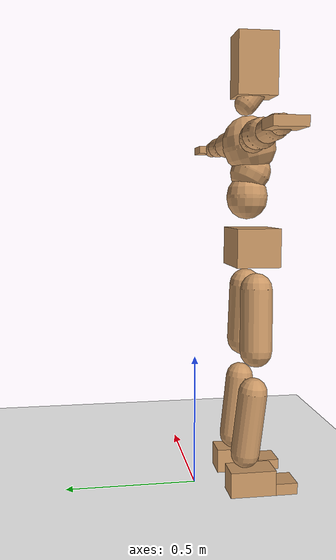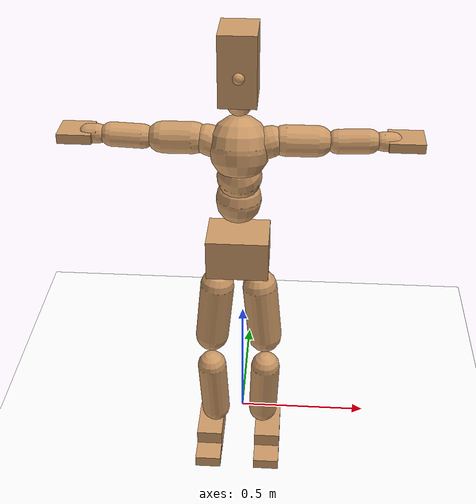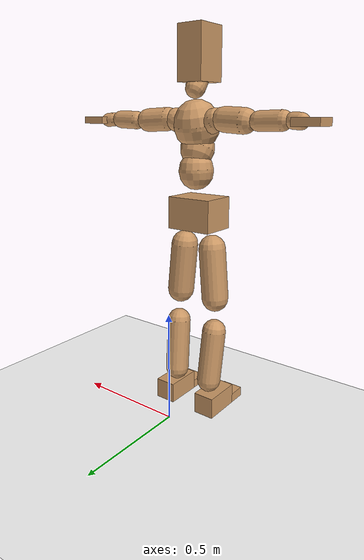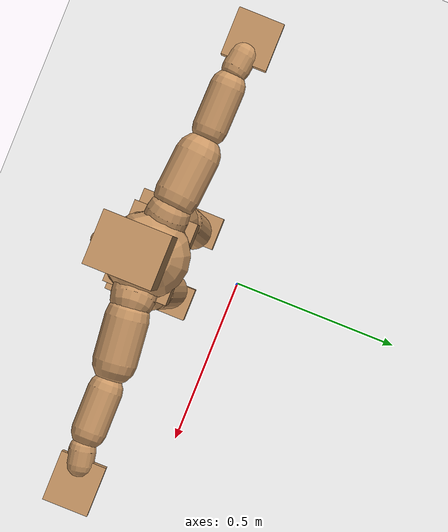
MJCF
<mujoco model="humanoid">
  <option integrator="implicitfast" />

  <visual>
    <global offwidth="1280" offheight="960" />
    <headlight active="1" ambient="0.34 0.34 0.34" diffuse="0.5 0.5 0.5" />
  </visual>

  <default>
    <joint damping="2" stiffness="2" armature="0.01" limited="true" solimplimit="0 .99 .01" />
    <geom condim="1" friction="0.7 0.005 0.0001" solimp=".99 .99 .003" solref="0.015 1" margin="0.001" rgba="0.8 0.6 .4 1" />
    <default class="smplcontact">
      <geom condim="3" friction="1. 0.005 0.0001" solref="0.015 1" solimp="0.98 0.98 0.001" priority="1" />
    </default>
    <default class="stiff_medium">
      <joint stiffness="10" />
    </default>
    <default class="stiff_medium_higher">
      <joint stiffness="50" />
    </default>
    <default class="stiff_high">
      <joint stiffness="100" />
    </default>
  </default>

  <asset>
    <texture type="skybox" builtin="gradient" rgb1="0.99 0.99 0.99" rgb2="0.608 0.828 0.892" width="100" />
    <texture builtin="flat" height="1278" mark="cross" markrgb="1 1 1" name="texgeom" random="0.01" rgb1="0.8 0.6 0.4" rgb2="0.8 0.6 0.4" type="cube" width="127" />
    <texture name="texplane" type="2d" builtin="checker" markrgb="1 1 1" rgb1="0.756 0.772 0.76" rgb2="0.6 0.6 0.6" width="100" height="100" />
    <material name="MatPlane" reflectance="0.5" texture="texplane" texrepeat="1 1" texuniform="true" />
    <material name="geom" texture="texgeom" texuniform="true" />
  </asset>

  <worldbody>
    <light name="tracking_light" pos="0 0 7" dir="0 0 -1" directional="true" cutoff="100" exponent="1" diffuse="1 1 1" specular="0.1 0.1 0.1" mode="trackcom" />
    <camera name="back" pos="0 3 2.4" xyaxes="-1 0 0 0 -1 2" mode="trackcom" />
    <camera name="side" pos="-3 0 2.4" xyaxes="0 -1 0 1 0 2" mode="trackcom" />
    <camera name="front_side" pos="-2.8 -2.8 0.8" xyaxes="0.5 -0.5 0 0.1 0.1 1" mode="trackcom" />
    <geom condim="3" name="floor" pos="0 0 0" rgba="1 1 1 1" size="100 100 .2" type="plane" material="MatPlane" />
    <body name="Pelvis" pos="-0.0018 -0.2233 0.9367" euler="90 0 0">
      <site name="Pelvis" size="0.01" />
      <freejoint name="Pelvis" />
      <geom type="box" pos="-0.0000 -0.0121 -0.0055" size="0.1069 0.0722 0.083" quat="1.0000 0.0000 0.0000 0.0000" density="3165.830099" name="Pelvis" />
      <body name="L_Hip" pos="0.0695 -0.0914 -0.0068">
        <joint name="L_Hip_x" type="hinge" pos="0 0 0" axis="1 0 0" stiffness="10.0" range="-160.0 22.92" class="stiff_medium" damping="15.0" armature="0.01"/>
        <joint name="L_Hip_y" type="hinge" pos="0 0 0" axis="0 1 0" stiffness="10.0" range="-70.0 70.0" class="stiff_medium" damping="10.000000000000002" armature="0.010000000000000005"/>
        <joint name="L_Hip_z" type="hinge" pos="0 0 0" axis="0 0 1" stiffness="10.0" range="-28.65 90.0" class="stiff_medium" damping="9.999999999999998" armature="0.009999999999999998"/>
        <geom type="capsule" density="2040.816327" fromto="0.0069 -0.075 -0.0009 0.0274 -0.3002 -0.0036" size="0.0615" name="L_Hip" />
        <body name="L_Knee" pos="0.0343 -0.3752 -0.0045">
          <joint name="L_Knee_x" type="hinge" pos="0 0 0" axis="1 0 0" range="-5.16 171.89" damping="8.000000000000005" armature="0.010000000000000014" stiffness="2.0"/>
          <joint name="L_Knee_y" type="hinge" pos="0 0 0" axis="0 1 0" range="-4.58 6.88" damping="7.999999999999998" armature="0.009999999999999995" stiffness="2.0"/>
          <joint name="L_Knee_z" type="hinge" pos="0 0 0" axis="0 0 1" range="-6.88 4.58" damping="8.000000000000004" armature="0.010000000000000009" stiffness="2.0"/>
          <geom type="capsule" density="1234.567901" fromto="-0.0027 -0.0796 -0.0087 -0.0109 -0.3184 -0.035" size="0.0541" name="L_Knee" />
          <body name="L_Ankle" pos="-0.0136 -0.398 -0.0437">
            <joint name="L_Ankle_x" type="hinge" pos="0 0 0" axis="1 0 0" range="-45.84 45.84" class="stiff_medium" damping="6.000000000000018" armature="0.010000000000000061" stiffness="10.0"/>
            <joint name="L_Ankle_y" type="hinge" pos="0 0 0" axis="0 1 0" range="-74.48 22.92" class="stiff_medium" damping="3.000000000000001" armature="0.010000000000000005" stiffness="10.0"/>
            <joint name="L_Ankle_z" type="hinge" pos="0 0 0" axis="0 0 1" range="-4.58 4.58" class="stiff_medium" damping="6.000000000000005" armature="0.010000000000000021" stiffness="10.0"/>
            <geom type="box" pos="0.0233 -0.0239 0.0242" size="0.0483 0.0464 0.085" quat="1.0000 0.0000 0.0000 0.0000" density="449.071558" name="L_Ankle" class="smplcontact" />
            <body name="L_Toe" pos="0.0264 -0.0558 0.1193">
              <joint name="L_Toe_x" type="hinge" pos="0 0 0" axis="1 0 0" range="-91.67 22.92" armature="0.00999999999999859" damping="1.9999999999998588" stiffness="2.0"/>
              <joint name="L_Toe_y" type="hinge" pos="0 0 0" axis="0 1 0" range="-4.58 4.58" armature="0.009999999999999976" damping="1.9999999999999976" stiffness="2.0"/>
              <joint name="L_Toe_z" type="hinge" pos="0 0 0" axis="0 0 1" range="-4.58 4.58" armature="0.009999999999998663" damping="1.9999999999998663" stiffness="2.0"/>
              <geom type="box" pos="-0.003 0.0055 0.0248" size="0.0478 0.02 0.0496" quat="1.0000 0.0000 0.0000 0.0000" density="423.206892" name="L_Toe" class="smplcontact" />
            </body>
          </body>
        </body>
      </body>
      <body name="R_Hip" pos="-0.0677 -0.0905 -0.0043">
        <joint name="R_Hip_x" type="hinge" pos="0 0 0" axis="1 0 0" stiffness="10.0" range="-160.0 22.92" class="stiff_medium" damping="15.0" armature="0.01"/>
        <joint name="R_Hip_y" type="hinge" pos="0 0 0" axis="0 1 0" stiffness="10.0" range="-70.0 70.0" class="stiff_medium" damping="10.000000000000002" armature="0.010000000000000005"/>
        <joint name="R_Hip_z" type="hinge" pos="0 0 0" axis="0 0 1" stiffness="10.0" range="-90.0 28.65" class="stiff_medium" damping="9.999999999999998" armature="0.009999999999999998"/>
        <geom type="capsule" density="2040.816327" fromto="-0.0077 -0.0765 -0.0018 -0.0306 -0.3061 -0.0071" size="0.0606" name="R_Hip" />
        <body name="R_Knee" pos="-0.0383 -0.3826 -0.0089">
          <joint name="R_Knee_x" type="hinge" pos="0 0 0" axis="1 0 0" range="-5.16 171.89" damping="8.000000000000005" armature="0.010000000000000014" stiffness="2.0"/>
          <joint name="R_Knee_y" type="hinge" pos="0 0 0" axis="0 1 0" range="-6.88 4.58" damping="7.999999999999998" armature="0.009999999999999995" stiffness="2.0"/>
          <joint name="R_Knee_z" type="hinge" pos="0 0 0" axis="0 0 1" range="-4.58 6.88" damping="8.000000000000004" armature="0.010000000000000009" stiffness="2.0"/>
          <geom type="capsule" density="1234.567901" fromto="0.0032 -0.0797 -0.0085 0.0126 -0.3187 -0.0338" size="0.0541" name="R_Knee" />
          <body name="R_Ankle" pos="0.0158 -0.3984 -0.0423">
            <joint name="R_Ankle_x" type="hinge" pos="0 0 0" axis="1 0 0" range="-45.84 45.84" class="stiff_medium" damping="6.000000000000018" armature="0.010000000000000061" stiffness="10.0"/>
            <joint name="R_Ankle_y" type="hinge" pos="0 0 0" axis="0 1 0" range="-22.92 74.48" class="stiff_medium" damping="3.000000000000001" armature="0.010000000000000005" stiffness="10.0"/>
            <joint name="R_Ankle_z" type="hinge" pos="0 0 0" axis="0 0 1" range="-4.58 4.58" class="stiff_medium" damping="6.000000000000005" armature="0.010000000000000021" stiffness="10.0"/>
            <geom type="box" pos="-0.0212 -0.0174 0.0256" size="0.0483 0.0478 0.0865" quat="1.0000 0.0000 0.0000 0.0000" density="434.700981" name="R_Ankle" class="smplcontact" />
            <body name="R_Toe" pos="-0.0254 -0.0481 0.1233">
              <joint name="R_Toe_x" type="hinge" pos="0 0 0" axis="1 0 0" range="-91.67 22.92" armature="0.00999999999999859" damping="1.9999999999998588" stiffness="2.0"/>
              <joint name="R_Toe_y" type="hinge" pos="0 0 0" axis="0 1 0" range="-4.58 4.58" armature="0.009999999999999976" damping="1.9999999999999976" stiffness="2.0"/>
              <joint name="R_Toe_z" type="hinge" pos="0 0 0" axis="0 0 1" range="-4.58 4.58" armature="0.009999999999998663" damping="1.9999999999998663" stiffness="2.0"/>
              <geom type="box" pos="0.0042 0.0045 0.0227" size="0.0479 0.0216 0.0493" quat="1.0000 0.0000 0.0000 0.0000" density="407.384095" name="R_Toe" class="smplcontact" />
            </body>
          </body>
        </body>
      </body>
      <body name="Torso" pos="-0.0025 0.109 -0.0267">
        <joint name="Torso_x" type="hinge" pos="0 0 0" axis="1 0 0" range="-25.78 57.3" class="stiff_medium" damping="13.296564125699913" armature="0.008717287887859698" stiffness="9.01394612244898"/>
        <joint name="Torso_y" type="hinge" pos="0 0 0" axis="0 1 0" range="-57.3 57.3" class="stiff_high" damping="11.857975578739207" armature="0.003844721181114158" stiffness="91.43158775510203"/>
        <joint name="Torso_z" type="hinge" pos="0 0 0" axis="0 0 1" range="-34.38 34.38" class="stiff_high" damping="16.193220219297853" armature="0.007045583299802339" stiffness="93.0442413043478"/>
        <geom type="capsule" density="2040.816327" fromto="0.0025 0.0608 0.0005 0.003 0.0743 0.0006" size="0.0769" name="Torso" />
        <body name="Spine" pos="0.0055 0.1352 0.0011">
          <joint name="Spine_x" type="hinge" pos="0 0 0" axis="1 0 0" stiffness="8.855082083333333" range="-25.78 57.3" class="stiff_medium" damping="13.07679767745399" armature="0.008582774445870411"/>
          <joint name="Spine_y" type="hinge" pos="0 0 0" axis="0 1 0" stiffness="8.966550425531915" range="-57.3 57.3" class="stiff_high" damping="4.670538649446806" armature="0.003801268715520681"/>
          <joint name="Spine_z" type="hinge" pos="0 0 0" axis="0 0 1" stiffness="17.399179999999998" range="-34.38 34.38" class="stiff_high" damping="8.612389288095054" armature="0.0059208768307291906"/>
          <geom type="capsule" density="2040.816327" fromto="0.0007 0.0238 0.0114 0.0008 0.0291 0.014" size="0.0755" name="Spine" />
          <body name="Chest" pos="0.0015 0.0529 0.0254">
            <joint name="Chest_x" type="hinge" pos="0 0 0" axis="1 0 0" stiffness="8.445605217391304" range="-25.78 57.3" class="stiff_medium" damping="12.725283601188007" armature="0.008521609816255424"/>
            <joint name="Chest_y" type="hinge" pos="0 0 0" axis="0 1 0" stiffness="7.416513142857141" range="-57.3 57.3" class="stiff_high" damping="4.235867490218071" armature="0.0037801147775485626"/>
            <joint name="Chest_z" type="hinge" pos="0 0 0" axis="0 0 1" stiffness="17.461715111111108" range="-34.38 34.38" class="stiff_high" damping="8.265316118618491" armature="0.00543374860898024"/>
            <geom type="capsule" density="2040.816327" fromto="-0.0009 0.0682 -0.0173 -0.001 0.0833 -0.0212" size="0.1002" name="Chest" />
            <body name="Neck" pos="-0.0028 0.2139 -0.0429">
              <joint name="Neck_x" type="hinge" pos="0 0 0" axis="1 0 0" range="-28.65 57.3" class="stiff_medium_higher" damping="9.999999999999993" armature="0.009999999999999988" stiffness="50.0"/>
              <joint name="Neck_y" type="hinge" pos="0 0 0" axis="0 1 0" range="-40.11 40.11" class="stiff_medium_higher" damping="10.0" armature="0.010000000000000002" stiffness="50.0"/>
              <joint name="Neck_z" type="hinge" pos="0 0 0" axis="0 0 1" range="-40.11 40.11" class="stiff_medium_higher" damping="9.999999999999993" armature="0.009999999999999985" stiffness="50.0"/>
              <geom type="capsule" density="1000" fromto="0.001 0.013 0.0103 0.0041 0.052 0.0411" size="0.0436" name="Neck" />
              <body name="Head" pos="0.0052 0.065 0.0513">
                <joint name="Head_x" type="hinge" pos="0 0 0" axis="1 0 0" range="-28.65 57.3" class="stiff_medium_higher" damping="1.9999999999999987" armature="0.009999999999999986" stiffness="50.0"/>
                <joint name="Head_y" type="hinge" pos="0 0 0" axis="0 1 0" range="-40.11 40.11" class="stiff_medium_higher" damping="2.0" armature="0.010000000000000002" stiffness="50.0"/>
                <joint name="Head_z" type="hinge" pos="0 0 0" axis="0 0 1" range="-40.11 40.11" class="stiff_medium_higher" damping="2.000000000000001" armature="0.010000000000000009" stiffness="50.0"/>
                <geom type="box" pos="-0.0042 0.0876 -0.0116" size="0.0606 0.1154 0.076" quat="1.0000 0.0000 0.0000 0.0000" density="1018.069894" name="Head" />
                <geom type="capsule" name="nose" size="0.02 0.01" pos="0 0.07 0.05" quat="1 0 0 0" mass="0" contype="0" conaffinity="0" />
              </body>
            </body>
            <body name="L_Thorax" pos="0.052205 0.0806262 -0.0225912">
              <joint name="L_Thorax_x" type="hinge" pos="0 0 0" axis="1 0 0" range="-10.89 4.58" class="stiff_medium_higher" damping="10.752161019344747" armature="0.0054925344912440666" stiffness="26.310478061224497"/>
              <joint name="L_Thorax_y" type="hinge" pos="0 0 0" axis="0 1 0" range="-28.65 17.19" class="stiff_medium_higher" damping="8.656507675839675" armature="0.0035990909186137975" stiffness="26.025712755102038"/>
              <joint name="L_Thorax_z" type="hinge" pos="0 0 0" axis="0 0 1" range="-31.51 40.11" class="stiff_medium_higher" damping="8.654936190408645" armature="0.003597349455452556" stiffness="26.02885867346939"/>
              <geom type="capsule" density="1000" fromto="0.0120575 0.00404125 -0.0011925 0.04823 0.016165 -0.00470375" size="0.0521" name="L_Thorax" />
              <body name="L_Shoulder" pos="0.0602875 0.0202062 -0.00589625">
                <joint name="L_Shoulder_x" type="hinge" pos="0 0 0" axis="1 0 0" range="-97.4 97.4" class="stiff_medium" damping="3.4355706113714177" armature="0.006181474178058657" stiffness="5.3039961224489796"/>
                <joint name="L_Shoulder_y" type="hinge" pos="0 0 0" axis="0 1 0" range="-108.86 80.21" class="stiff_medium" damping="2.6194672785690365" armature="0.003646930251057189" stiffness="5.226319999999999"/>
                <joint name="L_Shoulder_z" type="hinge" pos="0 0 0" axis="0 0 1" range="-97.4 85.94" class="stiff_medium" damping="2.6197349169276207" armature="0.003644479893049839" stiffness="5.230902653061225"/>
                <geom type="capsule" density="1000" fromto="0.0343837 -0.0017225 -0.00364375 0.137601 -0.0067575 -0.014575" size="0.0517" name="L_Shoulder" />
                <body name="L_Elbow" pos="0.171985 -0.00848 -0.0182187">
                  <joint name="L_Elbow_x" type="hinge" pos="0 0 0" axis="1 0 0" range="-17.19 4.58" damping="3.1785577743547178" armature="0.00739366237886889" stiffness="1.0931772653061227"/>
                  <joint name="L_Elbow_y" type="hinge" pos="0 0 0" axis="0 1 0" range="-180.0 17.19" damping="2.303303060735329" armature="0.0038850422609153757" stiffness="1.0924370204081633"/>
                  <joint name="L_Elbow_z" type="hinge" pos="0 0 0" axis="0 0 1" range="-100.84 4.58" damping="2.3008114328593776" armature="0.0038721783452337344" stiffness="1.0936961632653062"/>
                  <geom type="capsule" density="1000" fromto="0.0329925 0.0011925 -0.0001325 0.132102 0.00477 -0.00059625" size="0.0405" name="L_Elbow" />
                  <body name="L_Wrist" pos="0.165095 0.0059625 -0.000795">
                    <joint name="L_Wrist_x" type="hinge" pos="0 0 0" axis="1 0 0" range="-180.0 22.92" armature="0.008001427855743357" damping="1.4109622696560167" stiffness="1.2440370408163264"/>
                    <joint name="L_Wrist_y" type="hinge" pos="0 0 0" axis="0 1 0" range="-17.19 17.19" armature="0.004879471429003439" damping="1.0965644446974487" stiffness="1.2321555714285712"/>
                    <joint name="L_Wrist_z" type="hinge" pos="0 0 0" axis="0 0 1" range="-22.92 22.92" armature="0.004698864868438908" damping="1.0781698402208961" stiffness="1.2369478979591837"/>
                    <geom type="capsule" density="1000" fromto="0.01113 -0.00106 -0.0019875 0.04452 -0.00430625 -0.00795" size="0.0318" name="L_Wrist" class="smplcontact" />
                    <body name="L_Hand" pos="0.05565 -0.0054325 -0.00987125">
                      <joint name="L_Hand_x" type="hinge" pos="0 0 0" axis="1 0 0" range="-17.19 17.19" armature="0.009755552996204201" damping="1.6078618449168027" stiffness="1.3249990612244895"/>
                      <joint name="L_Hand_y" type="hinge" pos="0 0 0" axis="0 1 0" range="-51.57 51.57" armature="0.007043747166286052" damping="1.3662326477640427" stiffness="1.3249990408163264"/>
                      <joint name="L_Hand_z" type="hinge" pos="0 0 0" axis="0 0 1" range="-91.67 91.67" armature="0.0063208783295227566" damping="1.2942300773617743" stiffness="1.3249989999999998"/>
                      <geom type="box" pos="0.0326612 0.0006625 -0.0038425" size="0.0585 0.0158 0.0538" quat="1.0000 0.0000 0.0000 0.0000" density="400.552564" name="L_Hand" class="smplcontact" />
                    </body>
                  </body>
                </body>
              </body>
            </body>
            <body name="R_Thorax" pos="-0.0541925 0.078705 -0.0255725">
              <joint name="R_Thorax_x" type="hinge" pos="0 0 0" axis="1 0 0" range="-10.89 4.58" class="stiff_medium_higher" damping="10.752161019344747" armature="0.0054925344912440666" stiffness="26.310478061224497"/>
              <joint name="R_Thorax_y" type="hinge" pos="0 0 0" axis="0 1 0" range="-17.19 28.65" class="stiff_medium_higher" damping="8.656507675839675" armature="0.0035990909186137975" stiffness="26.025712755102038"/>
              <joint name="R_Thorax_z" type="hinge" pos="0 0 0" axis="0 0 1" range="-40.11 31.51" class="stiff_medium_higher" damping="8.654936190408645" armature="0.003597349455452556" stiffness="26.02885867346939"/>
              <geom type="capsule" density="1000" fromto="-0.01272 0.00430625 -0.0011925 -0.05088 0.017225 -0.00483625" size="0.0511" name="R_Thorax" />
              <body name="R_Shoulder" pos="-0.0636 0.0215975 -0.00602875">
                <joint name="R_Shoulder_x" type="hinge" pos="0 0 0" axis="1 0 0" range="-97.4 97.4" class="stiff_medium" damping="3.4355706113714177" armature="0.006181474178058657" stiffness="5.3039961224489796"/>
                <joint name="R_Shoulder_y" type="hinge" pos="0 0 0" axis="0 1 0" range="-80.21 108.86" class="stiff_medium" damping="2.6194672785690365" armature="0.003646930251057189" stiffness="5.226319999999999"/>
                <joint name="R_Shoulder_z" type="hinge" pos="0 0 0" axis="0 0 1" range="-85.94 97.4" class="stiff_medium" damping="2.6197349169276207" armature="0.003644479893049839" stiffness="5.230902653061225"/>
                <geom type="capsule" density="1000" fromto="-0.0335888 -0.00178875 -0.00284875 -0.134488 -0.00708875 -0.0113288" size="0.0531" name="R_Shoulder" />
                <body name="R_Elbow" pos="-0.168076 -0.00881125 -0.0141775">
                  <joint name="R_Elbow_x" type="hinge" pos="0 0 0" axis="1 0 0" range="-17.19 4.58" damping="3.1785577743547178" armature="0.00739366237886889" stiffness="1.0931772653061227"/>
                  <joint name="R_Elbow_y" type="hinge" pos="0 0 0" axis="0 1 0" range="-17.19 180.0" damping="2.303303060735329" armature="0.0038850422609153757" stiffness="1.0924370204081633"/>
                  <joint name="R_Elbow_z" type="hinge" pos="0 0 0" axis="0 0 1" range="-4.58 100.84" damping="2.3008114328593776" armature="0.0038721783452337344" stiffness="1.0936961632653062"/>
                  <geom type="capsule" density="1000" fromto="-0.0338538 0.00106 -0.00072875 -0.135282 0.0041075 -0.002915" size="0.0408" name="R_Elbow" />
                  <body name="R_Wrist" pos="-0.169136 0.0051675 -0.00371">
                    <joint name="R_Wrist_x" type="hinge" pos="0 0 0" axis="1 0 0" range="-180.0 22.92" armature="0.008001427855743357" damping="1.4109622696560167" stiffness="1.2440370408163264"/>
                    <joint name="R_Wrist_y" type="hinge" pos="0 0 0" axis="0 1 0" range="-17.19 17.19" armature="0.004879471429003439" damping="1.0965644446974487" stiffness="1.2321555714285712"/>
                    <joint name="R_Wrist_z" type="hinge" pos="0 0 0" axis="0 0 1" range="-22.92 22.92" armature="0.004698864868438908" damping="1.0781698402208961" stiffness="1.2369478979591837"/>
                    <geom type="capsule" density="1000" fromto="-0.0111962 -0.000795 -0.00139125 -0.0448512 -0.00324625 -0.00549875" size="0.0326" name="R_Wrist" class="smplcontact" />
                    <body name="R_Hand" pos="-0.0560475 -0.00404125 -0.00682375">
                      <joint name="R_Hand_x" type="hinge" pos="0 0 0" axis="1 0 0" range="-17.19 17.19" armature="0.009755552996204201" damping="1.6078618449168027" stiffness="1.3249990612244895"/>
                      <joint name="R_Hand_y" type="hinge" pos="0 0 0" axis="0 1 0" range="-51.57 51.57" armature="0.007043747166286052" damping="1.3662326477640427" stiffness="1.3249990408163264"/>
                      <joint name="R_Hand_z" type="hinge" pos="0 0 0" axis="0 0 1" range="-91.67 91.67" armature="0.0063208783295227566" damping="1.2942300773617743" stiffness="1.3249989999999998"/>
                      <geom type="box" pos="-0.0306075 -0.00059625 -0.00523375" size="0.0569 0.0164 0.0546" quat="1.0000 0.0000 0.0000 0.0000" density="403.679611" name="R_Hand" class="smplcontact" />
                    </body>
                  </body>
                </body>
              </body>
            </body>
          </body>
        </body>
      </body>
    </body>
  </worldbody>
  <actuator>
    <general name="L_Hip_x" joint="L_Hip_x" biastype="affine" gainprm="287.33006409732246" biasprm="-215.3247604770444 -180.0 -2.0" ctrllimited="true" ctrlrange="-1 1" forcerange="-360.0 360.0" />
    <general name="L_Hip_y" joint="L_Hip_y" biastype="affine" gainprm="219.9114857512855" biasprm="0.0 -180.0 -2.0000000000000004" ctrllimited="true" ctrlrange="-1 1" forcerange="-360.0 360.0" />
    <general name="L_Hip_z" joint="L_Hip_z" biastype="affine" gainprm="186.3749841742145" biasprm="96.3683546488669 -180.0 -1.9999999999999998" ctrllimited="true" ctrlrange="-1 1" forcerange="-360.0 360.0" />
    <general name="L_Knee_x" joint="L_Knee_x" biastype="affine" gainprm="278.10948965903646" biasprm="261.8988715665131 -180.0 -2.0000000000000013" ctrllimited="true" ctrlrange="-1 1" forcerange="-360.0 360.0" />
    <general name="L_Knee_y" joint="L_Knee_y" biastype="affine" gainprm="18.001325905069514" biasprm="3.612831551628262 -180.0 -1.9999999999999996" ctrllimited="true" ctrlrange="-1 1" forcerange="-360.0 360.0" />
    <general name="L_Knee_z" joint="L_Knee_z" biastype="affine" gainprm="18.001325905069514" biasprm="-3.612831551628262 -180.0 -2.000000000000001" ctrllimited="true" ctrlrange="-1 1" forcerange="-360.0 360.0" />
    <general name="L_Ankle_x" joint="L_Ankle_x" biastype="affine" gainprm="72.00530362027807" biasprm="0.0 -90.0 -2.0000000000000058" ctrllimited="true" ctrlrange="-1 1" forcerange="-180.0 180.0" />
    <general name="L_Ankle_y" joint="L_Ankle_y" biastype="affine" gainprm="76.49778111491148" biasprm="-40.49512930477244 -90.0 -2.0000000000000004" ctrllimited="true" ctrlrange="-1 1" forcerange="-180.0 180.0" />
    <general name="L_Ankle_z" joint="L_Ankle_z" biastype="affine" gainprm="7.1942471767206255" biasprm="0.0 -90.0 -2.0000000000000018" ctrllimited="true" ctrlrange="-1 1" forcerange="-180.0 180.0" />
    <general name="L_Toe_x" joint="L_Toe_x" biastype="affine" gainprm="71.99902043497087" biasprm="-43.19689898685965 -72.0 -0.7999999999999435" ctrllimited="true" ctrlrange="-1 1" forcerange="-144.0 144.0" />
    <general name="L_Toe_y" joint="L_Toe_y" biastype="affine" gainprm="5.755397741376501" biasprm="0.0 -72.0 -0.799999999999999" ctrllimited="true" ctrlrange="-1 1" forcerange="-144.0 144.0" />
    <general name="L_Toe_z" joint="L_Toe_z" biastype="affine" gainprm="5.755397741376501" biasprm="0.0 -72.0 -0.7999999999999465" ctrllimited="true" ctrlrange="-1 1" forcerange="-144.0 144.0" />
    <general name="R_Hip_x" joint="R_Hip_x" biastype="affine" gainprm="287.33006409732246" biasprm="-215.3247604770444 -180.0 -2.0" ctrllimited="true" ctrlrange="-1 1" forcerange="-360.0 360.0" />
    <general name="R_Hip_y" joint="R_Hip_y" biastype="affine" gainprm="219.9114857512855" biasprm="0.0 -180.0 -2.0000000000000004" ctrllimited="true" ctrlrange="-1 1" forcerange="-360.0 360.0" />
    <general name="R_Hip_z" joint="R_Hip_z" biastype="affine" gainprm="186.3749841742145" biasprm="-96.3683546488669 -180.0 -1.9999999999999998" ctrllimited="true" ctrlrange="-1 1" forcerange="-360.0 360.0" />
    <general name="R_Knee_x" joint="R_Knee_x" biastype="affine" gainprm="278.10948965903646" biasprm="261.8988715665131 -180.0 -2.0000000000000013" ctrllimited="true" ctrlrange="-1 1" forcerange="-360.0 360.0" />
    <general name="R_Knee_y" joint="R_Knee_y" biastype="affine" gainprm="18.001325905069514" biasprm="-3.612831551628262 -180.0 -1.9999999999999996" ctrllimited="true" ctrlrange="-1 1" forcerange="-360.0 360.0" />
    <general name="R_Knee_z" joint="R_Knee_z" biastype="affine" gainprm="18.001325905069514" biasprm="3.612831551628262 -180.0 -2.000000000000001" ctrllimited="true" ctrlrange="-1 1" forcerange="-360.0 360.0" />
    <general name="R_Ankle_x" joint="R_Ankle_x" biastype="affine" gainprm="72.00530362027807" biasprm="0.0 -90.0 -2.0000000000000058" ctrllimited="true" ctrlrange="-1 1" forcerange="-180.0 180.0" />
    <general name="R_Ankle_y" joint="R_Ankle_y" biastype="affine" gainprm="76.49778111491148" biasprm="40.49512930477244 -90.0 -2.0000000000000004" ctrllimited="true" ctrlrange="-1 1" forcerange="-180.0 180.0" />
    <general name="R_Ankle_z" joint="R_Ankle_z" biastype="affine" gainprm="7.1942471767206255" biasprm="0.0 -90.0 -2.0000000000000018" ctrllimited="true" ctrlrange="-1 1" forcerange="-180.0 180.0" />
    <general name="R_Toe_x" joint="R_Toe_x" biastype="affine" gainprm="71.99902043497087" biasprm="-43.19689898685965 -72.0 -0.7999999999999435" ctrllimited="true" ctrlrange="-1 1" forcerange="-144.0 144.0" />
    <general name="R_Toe_y" joint="R_Toe_y" biastype="affine" gainprm="5.755397741376501" biasprm="0.0 -72.0 -0.799999999999999" ctrllimited="true" ctrlrange="-1 1" forcerange="-144.0 144.0" />
    <general name="R_Toe_z" joint="R_Toe_z" biastype="affine" gainprm="5.755397741376501" biasprm="0.0 -72.0 -0.7999999999999465" ctrllimited="true" ctrlrange="-1 1" forcerange="-144.0 144.0" />
    <general name="Torso_x" joint="Torso_x" biastype="affine" gainprm="156.84477639727098" biasprm="59.505866057318 -216.33470693877553 -3.5457504335199768" ctrllimited="true" ctrlrange="-1 1" forcerange="-324.5020604081633 324.5020604081633" />
    <general name="Torso_y" joint="Torso_y" biastype="affine" gainprm="219.45197455967397" biasprm="0.0 -219.43581061224486 -2.3715951157478417" ctrllimited="true" ctrlrange="-1 1" forcerange="-329.1537159183673 329.1537159183673" />
    <general name="Torso_z" joint="Torso_z" biastype="affine" gainprm="133.99357690475964" biasprm="0.0 -223.30617913043474 -3.2386440438595705" ctrllimited="true" ctrlrange="-1 1" forcerange="-334.9592686956521 334.9592686956521" />
    <general name="Spine_x" joint="Spine_x" biastype="affine" gainprm="154.08050486134445" biasprm="58.457119802955894 -212.52197 -3.487146047321064" ctrllimited="true" ctrlrange="-1 1" forcerange="-318.782955 318.782955" />
    <general name="Spine_y" joint="Spine_y" biastype="affine" gainprm="215.21306193898633" biasprm="0.0 -215.19721021276595 -2.335269324723403" ctrllimited="true" ctrlrange="-1 1" forcerange="-322.7958153191489 322.7958153191489" />
    <general name="Spine_z" joint="Spine_z" biastype="affine" gainprm="125.28332386438697" biasprm="0.0 -208.79016 -2.870796429365018" ctrllimited="true" ctrlrange="-1 1" forcerange="-313.18523999999996 313.18523999999996" />
    <general name="Chest_x" joint="Chest_x" biastype="affine" gainprm="146.95551136725376" biasprm="55.753944611168 -202.69452521739132 -3.393408960316802" ctrllimited="true" ctrlrange="-1 1" forcerange="-304.04178782608693 304.04178782608693" />
    <general name="Chest_y" joint="Chest_y" biastype="affine" gainprm="178.00942688507038" biasprm="0.0 -177.9963154285714 -2.1179337451090356" ctrllimited="true" ctrlrange="-1 1" forcerange="-266.9944731428571 266.9944731428571" />
    <general name="Chest_z" joint="Chest_z" biastype="affine" gainprm="125.7336098306353" biasprm="0.0 -209.5405813333333 -2.7551053728728303" ctrllimited="true" ctrlrange="-1 1" forcerange="-314.31087199999996 314.31087199999996" />
    <general name="Neck_x" joint="Neck_x" biastype="affine" gainprm="27.00198885760427" biasprm="9.000662952534757 -36.0 -0.7999999999999995" ctrllimited="true" ctrlrange="-1 1" forcerange="-72.0 72.0" />
    <general name="Neck_y" joint="Neck_y" biastype="affine" gainprm="25.20185626709732" biasprm="0.0 -36.0 -0.8" ctrllimited="true" ctrlrange="-1 1" forcerange="-72.0 72.0" />
    <general name="Neck_z" joint="Neck_z" biastype="affine" gainprm="25.20185626709732" biasprm="0.0 -36.0 -0.7999999999999994" ctrllimited="true" ctrlrange="-1 1" forcerange="-72.0 72.0" />
    <general name="Head_x" joint="Head_x" biastype="affine" gainprm="18.001325905069514" biasprm="6.000441968356505 -24.0 -0.7999999999999995" ctrllimited="true" ctrlrange="-1 1" forcerange="-48.0 48.0" />
    <general name="Head_y" joint="Head_y" biastype="affine" gainprm="16.801237511398213" biasprm="0.0 -24.0 -0.8" ctrllimited="true" ctrlrange="-1 1" forcerange="-48.0 48.0" />
    <general name="Head_z" joint="Head_z" biastype="affine" gainprm="16.801237511398213" biasprm="0.0 -24.0 -0.8000000000000004" ctrllimited="true" ctrlrange="-1 1" forcerange="-48.0 48.0" />
    <general name="L_Thorax_x" joint="L_Thorax_x" biastype="affine" gainprm="8.524671780005175" biasprm="-3.4770962464015946 -63.14514734693879 -0.8601728815475799" ctrllimited="true" ctrlrange="-1 1" forcerange="-126.29029469387758 126.29029469387758" />
    <general name="L_Thorax_y" joint="L_Thorax_y" biastype="affine" gainprm="24.98652465153687" biasprm="-6.246631162884218 -62.461710612244886 -0.692520614067174" ctrllimited="true" ctrlrange="-1 1" forcerange="-124.92342122448977 124.92342122448977" />
    <general name="L_Thorax_z" joint="L_Thorax_z" biastype="affine" gainprm="39.04343825747016" biasprm="4.688265414887508 -62.46926081632654 -0.6923948952326917" ctrllimited="true" ctrlrange="-1 1" forcerange="-124.93852163265308 124.93852163265308" />
    <general name="L_Shoulder_x" joint="L_Shoulder_x" biastype="affine" gainprm="43.279353003673734" biasprm="0.0 -25.459181387755102 -0.9161521630323781" ctrllimited="true" ctrlrange="-1 1" forcerange="-50.918362775510204 50.918362775510204" />
    <general name="L_Shoulder_y" joint="L_Shoulder_y" biastype="affine" gainprm="41.39112503423586" biasprm="-6.272045973612193 -25.086336 -0.6985246076184097" ctrllimited="true" ctrlrange="-1 1" forcerange="-50.172672 50.172672" />
    <general name="L_Shoulder_z" joint="L_Shoulder_z" biastype="affine" gainprm="40.171909368365355" biasprm="-2.511018224945282 -25.108332734693878 -0.6985959778473656" ctrllimited="true" ctrlrange="-1 1" forcerange="-50.216665469387756 50.216665469387756" />
    <general name="L_Elbow_x" joint="L_Elbow_x" biastype="affine" gainprm="7.476509558353197" biasprm="-4.330674576519699 -39.35438155102042 -0.5085692438967548" ctrllimited="true" ctrlrange="-1 1" forcerange="-78.70876310204083 78.70876310204083" />
    <general name="L_Elbow_y" joint="L_Elbow_y" biastype="affine" gainprm="67.67545257136767" biasprm="-55.87626367028943 -39.327732734693875 -0.3685284897176526" ctrllimited="true" ctrlrange="-1 1" forcerange="-78.65546546938775 78.65546546938775" />
    <general name="L_Elbow_z" joint="L_Elbow_z" biastype="affine" gainprm="36.22176204255759" biasprm="-33.07443382865295 -39.373061877551024 -0.36812982925750043" ctrllimited="true" ctrlrange="-1 1" forcerange="-78.74612375510205 78.74612375510205" />
    <general name="L_Wrist_x" joint="L_Wrist_x" biastype="affine" gainprm="13.217727298647333" biasprm="-10.231818470685607 -7.464222244897958 -0.5643849078624067" ctrllimited="true" ctrlrange="-1 1" forcerange="-14.928444489795917 14.928444489795917" />
    <general name="L_Wrist_y" joint="L_Wrist_y" biastype="affine" gainprm="2.2180434007032876" biasprm="0.0 -7.392933428571427 -0.4386257778789795" ctrllimited="true" ctrlrange="-1 1" forcerange="-14.785866857142855 14.785866857142855" />
    <general name="L_Wrist_z" joint="L_Wrist_z" biastype="affine" gainprm="2.9688936318338586" biasprm="0.0 -7.421687387755102 -0.43126793608835845" ctrllimited="true" ctrlrange="-1 1" forcerange="-14.843374775510204 14.843374775510204" />
    <general name="L_Hand_x" joint="L_Hand_x" biastype="affine" gainprm="2.38517399250132" biasprm="0.0 -7.949994367346937 -0.6431447379667211" ctrllimited="true" ctrlrange="-1 1" forcerange="-15.899988734693874 15.899988734693874" />
    <general name="L_Hand_y" joint="L_Hand_y" biastype="affine" gainprm="7.155521867291758" biasprm="0.0 -7.949994244897958 -0.5464930591056171" ctrllimited="true" ctrlrange="-1 1" forcerange="-15.899988489795916 15.899988489795916" />
    <general name="L_Hand_z" joint="L_Hand_z" biastype="affine" gainprm="12.7195398365005" biasprm="0.0 -7.9499939999999985 -0.5176920309447097" ctrllimited="true" ctrlrange="-1 1" forcerange="-15.899987999999997 15.899987999999997" />
    <general name="R_Thorax_x" joint="R_Thorax_x" biastype="affine" gainprm="8.524671780005175" biasprm="-3.4770962464015946 -63.14514734693879 -0.8601728815475799" ctrllimited="true" ctrlrange="-1 1" forcerange="-126.29029469387758 126.29029469387758" />
    <general name="R_Thorax_y" joint="R_Thorax_y" biastype="affine" gainprm="24.98652465153687" biasprm="6.246631162884214 -62.461710612244886 -0.692520614067174" ctrllimited="true" ctrlrange="-1 1" forcerange="-124.92342122448977 124.92342122448977" />
    <general name="R_Thorax_z" joint="R_Thorax_z" biastype="affine" gainprm="39.04343825747016" biasprm="-4.688265414887508 -62.46926081632654 -0.6923948952326917" ctrllimited="true" ctrlrange="-1 1" forcerange="-124.93852163265308 124.93852163265308" />
    <general name="R_Shoulder_x" joint="R_Shoulder_x" biastype="affine" gainprm="43.279353003673734" biasprm="0.0 -25.459181387755102 -0.9161521630323781" ctrllimited="true" ctrlrange="-1 1" forcerange="-50.918362775510204 50.918362775510204" />
    <general name="R_Shoulder_y" joint="R_Shoulder_y" biastype="affine" gainprm="41.39112503423586" biasprm="6.272045973612193 -25.086336 -0.6985246076184097" ctrllimited="true" ctrlrange="-1 1" forcerange="-50.172672 50.172672" />
    <general name="R_Shoulder_z" joint="R_Shoulder_z" biastype="affine" gainprm="40.171909368365355" biasprm="2.5110182249452766 -25.108332734693878 -0.6985959778473656" ctrllimited="true" ctrlrange="-1 1" forcerange="-50.216665469387756 50.216665469387756" />
    <general name="R_Elbow_x" joint="R_Elbow_x" biastype="affine" gainprm="7.476509558353197" biasprm="-4.330674576519699 -39.35438155102042 -0.5085692438967548" ctrllimited="true" ctrlrange="-1 1" forcerange="-78.70876310204083 78.70876310204083" />
    <general name="R_Elbow_y" joint="R_Elbow_y" biastype="affine" gainprm="67.67545257136767" biasprm="55.87626367028943 -39.327732734693875 -0.3685284897176526" ctrllimited="true" ctrlrange="-1 1" forcerange="-78.65546546938775 78.65546546938775" />
    <general name="R_Elbow_z" joint="R_Elbow_z" biastype="affine" gainprm="36.22176204255759" biasprm="33.07443382865295 -39.373061877551024 -0.36812982925750043" ctrllimited="true" ctrlrange="-1 1" forcerange="-78.74612375510205 78.74612375510205" />
    <general name="R_Wrist_x" joint="R_Wrist_x" biastype="affine" gainprm="13.217727298647333" biasprm="-10.231818470685607 -7.464222244897958 -0.5643849078624067" ctrllimited="true" ctrlrange="-1 1" forcerange="-14.928444489795917 14.928444489795917" />
    <general name="R_Wrist_y" joint="R_Wrist_y" biastype="affine" gainprm="2.2180434007032876" biasprm="0.0 -7.392933428571427 -0.4386257778789795" ctrllimited="true" ctrlrange="-1 1" forcerange="-14.785866857142855 14.785866857142855" />
    <general name="R_Wrist_z" joint="R_Wrist_z" biastype="affine" gainprm="2.9688936318338586" biasprm="0.0 -7.421687387755102 -0.43126793608835845" ctrllimited="true" ctrlrange="-1 1" forcerange="-14.843374775510204 14.843374775510204" />
    <general name="R_Hand_x" joint="R_Hand_x" biastype="affine" gainprm="2.38517399250132" biasprm="0.0 -7.949994367346937 -0.6431447379667211" ctrllimited="true" ctrlrange="-1 1" forcerange="-15.899988734693874 15.899988734693874" />
    <general name="R_Hand_y" joint="R_Hand_y" biastype="affine" gainprm="7.155521867291758" biasprm="0.0 -7.949994244897958 -0.5464930591056171" ctrllimited="true" ctrlrange="-1 1" forcerange="-15.899988489795916 15.899988489795916" />
    <general name="R_Hand_z" joint="R_Hand_z" biastype="affine" gainprm="12.7195398365005" biasprm="0.0 -7.9499939999999985 -0.5176920309447097" ctrllimited="true" ctrlrange="-1 1" forcerange="-15.899987999999997 15.899987999999997" />
  </actuator>
  <contact>
    <exclude body1="Torso" body2="Chest" />
    <exclude body1="Head" body2="Chest" />
    <exclude body1="R_Knee" body2="R_Toe" />
    <exclude body1="R_Knee" body2="L_Ankle" />
    <exclude body1="R_Knee" body2="L_Toe" />
    <exclude body1="L_Knee" body2="L_Toe" />
    <exclude body1="L_Knee" body2="R_Ankle" />
    <exclude body1="L_Knee" body2="R_Toe" />
    <exclude body1="L_Shoulder" body2="Chest" />
    <exclude body1="R_Shoulder" body2="Chest" />
  </contact>
  <sensor>
    <framelinvel name="sensor_Pelvis_framelinvel" objtype="xbody" objname="Pelvis" />
    <framelinvel name="sensor_L_Hip_framelinvel" objtype="xbody" objname="L_Hip" />
    <framelinvel name="sensor_L_Knee_framelinvel" objtype="xbody" objname="L_Knee" />
    <framelinvel name="sensor_L_Ankle_framelinvel" objtype="xbody" objname="L_Ankle" />
    <framelinvel name="sensor_L_Toe_framelinvel" objtype="xbody" objname="L_Toe" />
    <framelinvel name="sensor_R_Hip_framelinvel" objtype="xbody" objname="R_Hip" />
    <framelinvel name="sensor_R_Knee_framelinvel" objtype="xbody" objname="R_Knee" />
    <framelinvel name="sensor_R_Ankle_framelinvel" objtype="xbody" objname="R_Ankle" />
    <framelinvel name="sensor_R_Toe_framelinvel" objtype="xbody" objname="R_Toe" />
    <framelinvel name="sensor_Torso_framelinvel" objtype="xbody" objname="Torso" />
    <framelinvel name="sensor_Spine_framelinvel" objtype="xbody" objname="Spine" />
    <framelinvel name="sensor_Chest_framelinvel" objtype="xbody" objname="Chest" />
    <framelinvel name="sensor_Neck_framelinvel" objtype="xbody" objname="Neck" />
    <framelinvel name="sensor_Head_framelinvel" objtype="xbody" objname="Head" />
    <framelinvel name="sensor_L_Thorax_framelinvel" objtype="xbody" objname="L_Thorax" />
    <framelinvel name="sensor_L_Shoulder_framelinvel" objtype="xbody" objname="L_Shoulder" />
    <framelinvel name="sensor_L_Elbow_framelinvel" objtype="xbody" objname="L_Elbow" />
    <framelinvel name="sensor_L_Wrist_framelinvel" objtype="xbody" objname="L_Wrist" />
    <framelinvel name="sensor_L_Hand_framelinvel" objtype="xbody" objname="L_Hand" />
    <framelinvel name="sensor_R_Thorax_framelinvel" objtype="xbody" objname="R_Thorax" />
    <framelinvel name="sensor_R_Shoulder_framelinvel" objtype="xbody" objname="R_Shoulder" />
    <framelinvel name="sensor_R_Elbow_framelinvel" objtype="xbody" objname="R_Elbow" />
    <framelinvel name="sensor_R_Wrist_framelinvel" objtype="xbody" objname="R_Wrist" />
    <framelinvel name="sensor_R_Hand_framelinvel" objtype="xbody" objname="R_Hand" />
    <frameangvel name="sensor_Pelvis_frameangvel" objtype="xbody" objname="Pelvis" />
    <frameangvel name="sensor_L_Hip_frameangvel" objtype="xbody" objname="L_Hip" />
    <frameangvel name="sensor_L_Knee_frameangvel" objtype="xbody" objname="L_Knee" />
    <frameangvel name="sensor_L_Ankle_frameangvel" objtype="xbody" objname="L_Ankle" />
    <frameangvel name="sensor_L_Toe_frameangvel" objtype="xbody" objname="L_Toe" />
    <frameangvel name="sensor_R_Hip_frameangvel" objtype="xbody" objname="R_Hip" />
    <frameangvel name="sensor_R_Knee_frameangvel" objtype="xbody" objname="R_Knee" />
    <frameangvel name="sensor_R_Ankle_frameangvel" objtype="xbody" objname="R_Ankle" />
    <frameangvel name="sensor_R_Toe_frameangvel" objtype="xbody" objname="R_Toe" />
    <frameangvel name="sensor_Torso_frameangvel" objtype="xbody" objname="Torso" />
    <frameangvel name="sensor_Spine_frameangvel" objtype="xbody" objname="Spine" />
    <frameangvel name="sensor_Chest_frameangvel" objtype="xbody" objname="Chest" />
    <frameangvel name="sensor_Neck_frameangvel" objtype="xbody" objname="Neck" />
    <frameangvel name="sensor_Head_frameangvel" objtype="xbody" objname="Head" />
    <frameangvel name="sensor_L_Thorax_frameangvel" objtype="xbody" objname="L_Thorax" />
    <frameangvel name="sensor_L_Shoulder_frameangvel" objtype="xbody" objname="L_Shoulder" />
    <frameangvel name="sensor_L_Elbow_frameangvel" objtype="xbody" objname="L_Elbow" />
    <frameangvel name="sensor_L_Wrist_frameangvel" objtype="xbody" objname="L_Wrist" />
    <frameangvel name="sensor_L_Hand_frameangvel" objtype="xbody" objname="L_Hand" />
    <frameangvel name="sensor_R_Thorax_frameangvel" objtype="xbody" objname="R_Thorax" />
    <frameangvel name="sensor_R_Shoulder_frameangvel" objtype="xbody" objname="R_Shoulder" />
    <frameangvel name="sensor_R_Elbow_frameangvel" objtype="xbody" objname="R_Elbow" />
    <frameangvel name="sensor_R_Wrist_frameangvel" objtype="xbody" objname="R_Wrist" />
    <frameangvel name="sensor_R_Hand_frameangvel" objtype="xbody" objname="R_Hand" />
    <subtreelinvel name="Chest_subtreelinvel" body="Chest" />
    <gyro name="Pelvis_gyro" site="Pelvis" />
  </sensor>
</mujoco>
